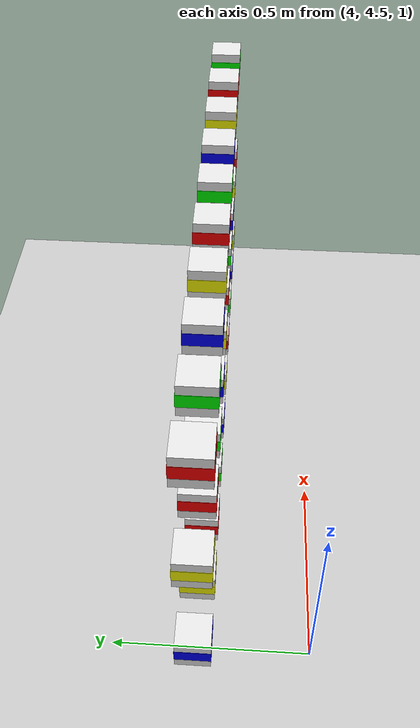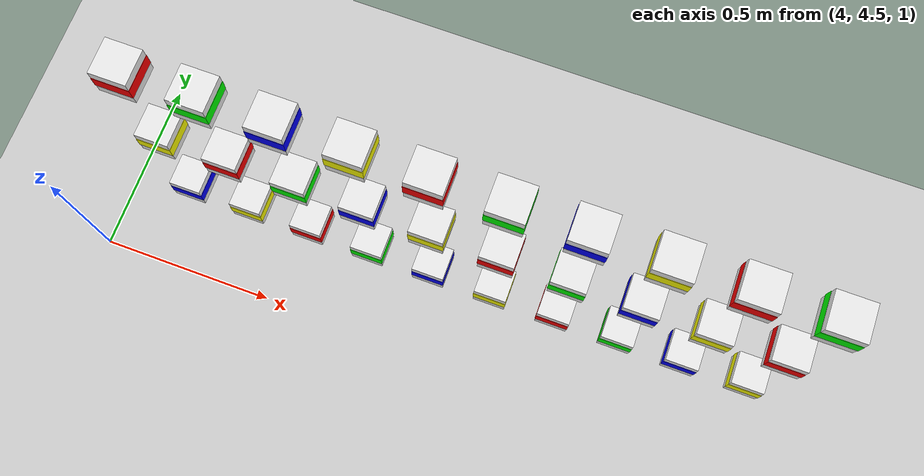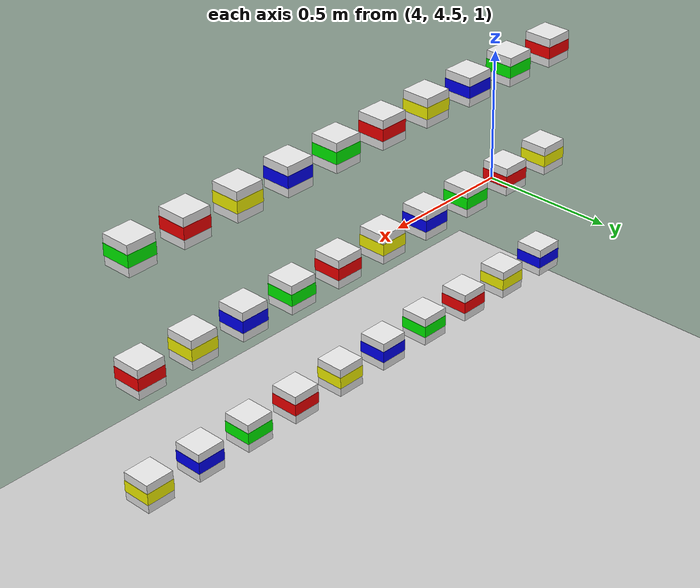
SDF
<sdf version="1.7">
 <world name="default">
  <light name="sun" type="directional">
   <pose>0 0 10 0 0 0</pose>
   <diffuse>0.8 0.8 0.8 1</diffuse>
   <specular>0.2 0.2 0.2 1</specular>
   <attenuation>
    <range>1000</range>
    <constant>0.9</constant>
    <linear>0.01</linear>
    <quadratic>0.001</quadratic>
   </attenuation>
   <direction>-0.5 0.1 -0.9</direction>
   <spot><inner_angle>0</inner_angle><outer_angle>0</outer_angle><falloff>0</falloff></spot>
  </light>
  <model name="ground_plane">
   <static>1</static>
   <link name="link">
    <collision name="collision">
     <geometry><plane><normal>0 0 1</normal><size>100 100</size></plane></geometry>
     <surface>
      <contact><collide_bitmask>65535</collide_bitmask></contact>
      <friction><ode><mu>100</mu><mu2>50</mu2></ode></friction>
     </surface>
    </collision>
    <visual name="visual">
     <cast_shadows>0</cast_shadows>
     <geometry><plane><normal>0 0 1</normal><size>100 100</size></plane></geometry>
     <material>
      <script><uri>file://media/materials/scripts/gazebo.material</uri><name>Gazebo/Grey</name></script>
     </material>
    </visual>
   </link>
  </model>
  <gravity>0 0 -9.8</gravity>
  <magnetic_field>6e-06 2.3e-05 -4.2e-05</magnetic_field>
  <atmosphere type="adiabatic"/>
  <physics type="ode">
   <max_step_size>0.001</max_step_size>
   <real_time_factor>1</real_time_factor>
   <real_time_update_rate>200</real_time_update_rate>
  </physics>
  <scene><ambient>0.4 0.4 0.4 1</ambient><background>0.7 0.7 0.7 1</background><shadows>1</shadows></scene>
  <audio><device>default</device></audio>
  <spherical_coordinates>
   <surface_model>EARTH_WGS84</surface_model>
   <latitude_deg>0</latitude_deg>
   <longitude_deg>0</longitude_deg>
   <elevation>0</elevation>
   <heading_deg>0</heading_deg>
  </spherical_coordinates>
  <model name="medicine_box_L1_1">
   <static>0</static>
   <pose>4.1 4.8 0.85 0 0 0</pose>
   <link name="link">
    <inertial><mass>0.1</mass><inertia><ixx>0.0001</ixx><iyy>0.0001</iyy><izz>0.0001</izz></inertia></inertial>
    <collision name="col">
     <geometry><box><size>0.1 0.1 0.1</size></box></geometry>
     <surface><friction><ode><mu>1.0</mu><mu2>1.0</mu2></ode></friction></surface>
    </collision>
    <visual name="vis_base">
     <geometry><box><size>0.1 0.1 0.1</size></box></geometry>
     <material><script><name>Gazebo/White</name></script></material>
    </visual>
    <visual name="vis_band">
     <geometry><box><size>0.102 0.102 0.04</size></box></geometry>
     <material><ambient>0 0 1 1.0</ambient><diffuse>0 0 1 1.0</diffuse></material>
    </visual>
   </link>
  </model>
  <model name="medicine_box_L1_2">
   <static>0</static>
   <pose>4.3 4.8 0.85 0 0 0</pose>
   <link name="link">
    <inertial><mass>0.1</mass><inertia><ixx>0.0001</ixx><iyy>0.0001</iyy><izz>0.0001</izz></inertia></inertial>
    <collision name="col">
     <geometry><box><size>0.1 0.1 0.1</size></box></geometry>
     <surface><friction><ode><mu>1.0</mu><mu2>1.0</mu2></ode></friction></surface>
    </collision>
    <visual name="vis_base">
     <geometry><box><size>0.1 0.1 0.1</size></box></geometry>
     <material><script><name>Gazebo/White</name></script></material>
    </visual>
    <visual name="vis_band">
     <geometry><box><size>0.102 0.102 0.04</size></box></geometry>
     <material><ambient>1 1 0 1.0</ambient><diffuse>1 1 0 1.0</diffuse></material>
    </visual>
   </link>
  </model>
  <model name="medicine_box_L1_3">
   <static>0</static>
   <pose>4.5 4.8 0.85 0 0 0</pose>
   <link name="link">
    <inertial><mass>0.1</mass><inertia><ixx>0.0001</ixx><iyy>0.0001</iyy><izz>0.0001</izz></inertia></inertial>
    <collision name="col">
     <geometry><box><size>0.1 0.1 0.1</size></box></geometry>
     <surface><friction><ode><mu>1.0</mu><mu2>1.0</mu2></ode></friction></surface>
    </collision>
    <visual name="vis_base">
     <geometry><box><size>0.1 0.1 0.1</size></box></geometry>
     <material><script><name>Gazebo/White</name></script></material>
    </visual>
    <visual name="vis_band">
     <geometry><box><size>0.102 0.102 0.04</size></box></geometry>
     <material><ambient>1 0 0 1.0</ambient><diffuse>1 0 0 1.0</diffuse></material>
    </visual>
   </link>
  </model>
  <model name="medicine_box_L1_4">
   <static>0</static>
   <pose>4.7 4.8 0.85 0 0 0</pose>
   <link name="link">
    <inertial><mass>0.1</mass><inertia><ixx>0.0001</ixx><iyy>0.0001</iyy><izz>0.0001</izz></inertia></inertial>
    <collision name="col">
     <geometry><box><size>0.1 0.1 0.1</size></box></geometry>
     <surface><friction><ode><mu>1.0</mu><mu2>1.0</mu2></ode></friction></surface>
    </collision>
    <visual name="vis_base">
     <geometry><box><size>0.1 0.1 0.1</size></box></geometry>
     <material><script><name>Gazebo/White</name></script></material>
    </visual>
    <visual name="vis_band">
     <geometry><box><size>0.102 0.102 0.04</size></box></geometry>
     <material><ambient>0 1 0 1.0</ambient><diffuse>0 1 0 1.0</diffuse></material>
    </visual>
   </link>
  </model>
  <model name="medicine_box_L1_5">
   <static>0</static>
   <pose>4.9 4.8 0.85 0 0 0</pose>
   <link name="link">
    <inertial><mass>0.1</mass><inertia><ixx>0.0001</ixx><iyy>0.0001</iyy><izz>0.0001</izz></inertia></inertial>
    <collision name="col">
     <geometry><box><size>0.1 0.1 0.1</size></box></geometry>
     <surface><friction><ode><mu>1.0</mu><mu2>1.0</mu2></ode></friction></surface>
    </collision>
    <visual name="vis_base">
     <geometry><box><size>0.1 0.1 0.1</size></box></geometry>
     <material><script><name>Gazebo/White</name></script></material>
    </visual>
    <visual name="vis_band">
     <geometry><box><size>0.102 0.102 0.04</size></box></geometry>
     <material><ambient>0 0 1 1.0</ambient><diffuse>0 0 1 1.0</diffuse></material>
    </visual>
   </link>
  </model>
  <model name="medicine_box_L1_6">
   <static>0</static>
   <pose>5.1 4.8 0.85 0 0 0</pose>
   <link name="link">
    <inertial><mass>0.1</mass><inertia><ixx>0.0001</ixx><iyy>0.0001</iyy><izz>0.0001</izz></inertia></inertial>
    <collision name="col">
     <geometry><box><size>0.1 0.1 0.1</size></box></geometry>
     <surface><friction><ode><mu>1.0</mu><mu2>1.0</mu2></ode></friction></surface>
    </collision>
    <visual name="vis_base">
     <geometry><box><size>0.1 0.1 0.1</size></box></geometry>
     <material><script><name>Gazebo/White</name></script></material>
    </visual>
    <visual name="vis_band">
     <geometry><box><size>0.102 0.102 0.04</size></box></geometry>
     <material><ambient>1 1 0 1.0</ambient><diffuse>1 1 0 1.0</diffuse></material>
    </visual>
   </link>
  </model>
  <model name="medicine_box_L1_7">
   <static>0</static>
   <pose>5.3 4.8 0.85 0 0 0</pose>
   <link name="link">
    <inertial><mass>0.1</mass><inertia><ixx>0.0001</ixx><iyy>0.0001</iyy><izz>0.0001</izz></inertia></inertial>
    <collision name="col">
     <geometry><box><size>0.1 0.1 0.1</size></box></geometry>
     <surface><friction><ode><mu>1.0</mu><mu2>1.0</mu2></ode></friction></surface>
    </collision>
    <visual name="vis_base">
     <geometry><box><size>0.1 0.1 0.1</size></box></geometry>
     <material><script><name>Gazebo/White</name></script></material>
    </visual>
    <visual name="vis_band">
     <geometry><box><size>0.102 0.102 0.04</size></box></geometry>
     <material><ambient>1 0 0 1.0</ambient><diffuse>1 0 0 1.0</diffuse></material>
    </visual>
   </link>
  </model>
  <model name="medicine_box_L1_8">
   <static>0</static>
   <pose>5.5 4.8 0.85 0 0 0</pose>
   <link name="link">
    <inertial><mass>0.1</mass><inertia><ixx>0.0001</ixx><iyy>0.0001</iyy><izz>0.0001</izz></inertia></inertial>
    <collision name="col">
     <geometry><box><size>0.1 0.1 0.1</size></box></geometry>
     <surface><friction><ode><mu>1.0</mu><mu2>1.0</mu2></ode></friction></surface>
    </collision>
    <visual name="vis_base">
     <geometry><box><size>0.1 0.1 0.1</size></box></geometry>
     <material><script><name>Gazebo/White</name></script></material>
    </visual>
    <visual name="vis_band">
     <geometry><box><size>0.102 0.102 0.04</size></box></geometry>
     <material><ambient>0 1 0 1.0</ambient><diffuse>0 1 0 1.0</diffuse></material>
    </visual>
   </link>
  </model>
  <model name="medicine_box_L1_9">
   <static>0</static>
   <pose>5.7 4.8 0.85 0 0 0</pose>
   <link name="link">
    <inertial><mass>0.1</mass><inertia><ixx>0.0001</ixx><iyy>0.0001</iyy><izz>0.0001</izz></inertia></inertial>
    <collision name="col">
     <geometry><box><size>0.1 0.1 0.1</size></box></geometry>
     <surface><friction><ode><mu>1.0</mu><mu2>1.0</mu2></ode></friction></surface>
    </collision>
    <visual name="vis_base">
     <geometry><box><size>0.1 0.1 0.1</size></box></geometry>
     <material><script><name>Gazebo/White</name></script></material>
    </visual>
    <visual name="vis_band">
     <geometry><box><size>0.102 0.102 0.04</size></box></geometry>
     <material><ambient>0 0 1 1.0</ambient><diffuse>0 0 1 1.0</diffuse></material>
    </visual>
   </link>
  </model>
  <model name="medicine_box_L1_10">
   <static>0</static>
   <pose>5.9 4.8 0.85 0 0 0</pose>
   <link name="link">
    <inertial><mass>0.1</mass><inertia><ixx>0.0001</ixx><iyy>0.0001</iyy><izz>0.0001</izz></inertia></inertial>
    <collision name="col">
     <geometry><box><size>0.1 0.1 0.1</size></box></geometry>
     <surface><friction><ode><mu>1.0</mu><mu2>1.0</mu2></ode></friction></surface>
    </collision>
    <visual name="vis_base">
     <geometry><box><size>0.1 0.1 0.1</size></box></geometry>
     <material><script><name>Gazebo/White</name></script></material>
    </visual>
    <visual name="vis_band">
     <geometry><box><size>0.102 0.102 0.04</size></box></geometry>
     <material><ambient>1 1 0 1.0</ambient><diffuse>1 1 0 1.0</diffuse></material>
    </visual>
   </link>
  </model>
  <model name="medicine_box_L2_1">
   <static>0</static>
   <pose>4.1 4.8 1.25 0 0 0</pose>
   <link name="link">
    <inertial><mass>0.1</mass><inertia><ixx>0.0001</ixx><iyy>0.0001</iyy><izz>0.0001</izz></inertia></inertial>
    <collision name="col">
     <geometry><box><size>0.1 0.1 0.1</size></box></geometry>
     <surface><friction><ode><mu>1.0</mu><mu2>1.0</mu2></ode></friction></surface>
    </collision>
    <visual name="vis_base">
     <geometry><box><size>0.1 0.1 0.1</size></box></geometry>
     <material><script><name>Gazebo/White</name></script></material>
    </visual>
    <visual name="vis_band">
     <geometry><box><size>0.102 0.102 0.04</size></box></geometry>
     <material><ambient>1 1 0 1.0</ambient><diffuse>1 1 0 1.0</diffuse></material>
    </visual>
   </link>
  </model>
  <model name="medicine_box_L2_2">
   <static>0</static>
   <pose>4.3 4.8 1.25 0 0 0</pose>
   <link name="link">
    <inertial><mass>0.1</mass><inertia><ixx>0.0001</ixx><iyy>0.0001</iyy><izz>0.0001</izz></inertia></inertial>
    <collision name="col">
     <geometry><box><size>0.1 0.1 0.1</size></box></geometry>
     <surface><friction><ode><mu>1.0</mu><mu2>1.0</mu2></ode></friction></surface>
    </collision>
    <visual name="vis_base">
     <geometry><box><size>0.1 0.1 0.1</size></box></geometry>
     <material><script><name>Gazebo/White</name></script></material>
    </visual>
    <visual name="vis_band">
     <geometry><box><size>0.102 0.102 0.04</size></box></geometry>
     <material><ambient>1 0 0 1.0</ambient><diffuse>1 0 0 1.0</diffuse></material>
    </visual>
   </link>
  </model>
  <model name="medicine_box_L2_3">
   <static>0</static>
   <pose>4.5 4.8 1.25 0 0 0</pose>
   <link name="link">
    <inertial><mass>0.1</mass><inertia><ixx>0.0001</ixx><iyy>0.0001</iyy><izz>0.0001</izz></inertia></inertial>
    <collision name="col">
     <geometry><box><size>0.1 0.1 0.1</size></box></geometry>
     <surface><friction><ode><mu>1.0</mu><mu2>1.0</mu2></ode></friction></surface>
    </collision>
    <visual name="vis_base">
     <geometry><box><size>0.1 0.1 0.1</size></box></geometry>
     <material><script><name>Gazebo/White</name></script></material>
    </visual>
    <visual name="vis_band">
     <geometry><box><size>0.102 0.102 0.04</size></box></geometry>
     <material><ambient>0 1 0 1.0</ambient><diffuse>0 1 0 1.0</diffuse></material>
    </visual>
   </link>
  </model>
  <model name="medicine_box_L2_4">
   <static>0</static>
   <pose>4.7 4.8 1.25 0 0 0</pose>
   <link name="link">
    <inertial><mass>0.1</mass><inertia><ixx>0.0001</ixx><iyy>0.0001</iyy><izz>0.0001</izz></inertia></inertial>
    <collision name="col">
     <geometry><box><size>0.1 0.1 0.1</size></box></geometry>
     <surface><friction><ode><mu>1.0</mu><mu2>1.0</mu2></ode></friction></surface>
    </collision>
    <visual name="vis_base">
     <geometry><box><size>0.1 0.1 0.1</size></box></geometry>
     <material><script><name>Gazebo/White</name></script></material>
    </visual>
    <visual name="vis_band">
     <geometry><box><size>0.102 0.102 0.04</size></box></geometry>
     <material><ambient>0 0 1 1.0</ambient><diffuse>0 0 1 1.0</diffuse></material>
    </visual>
   </link>
  </model>
  <model name="medicine_box_L2_5">
   <static>0</static>
   <pose>4.9 4.8 1.25 0 0 0</pose>
   <link name="link">
    <inertial><mass>0.1</mass><inertia><ixx>0.0001</ixx><iyy>0.0001</iyy><izz>0.0001</izz></inertia></inertial>
    <collision name="col">
     <geometry><box><size>0.1 0.1 0.1</size></box></geometry>
     <surface><friction><ode><mu>1.0</mu><mu2>1.0</mu2></ode></friction></surface>
    </collision>
    <visual name="vis_base">
     <geometry><box><size>0.1 0.1 0.1</size></box></geometry>
     <material><script><name>Gazebo/White</name></script></material>
    </visual>
    <visual name="vis_band">
     <geometry><box><size>0.102 0.102 0.04</size></box></geometry>
     <material><ambient>1 1 0 1.0</ambient><diffuse>1 1 0 1.0</diffuse></material>
    </visual>
   </link>
  </model>
  <model name="medicine_box_L2_6">
   <static>0</static>
   <pose>5.1 4.8 1.25 0 0 0</pose>
   <link name="link">
    <inertial><mass>0.1</mass><inertia><ixx>0.0001</ixx><iyy>0.0001</iyy><izz>0.0001</izz></inertia></inertial>
    <collision name="col">
     <geometry><box><size>0.1 0.1 0.1</size></box></geometry>
     <surface><friction><ode><mu>1.0</mu><mu2>1.0</mu2></ode></friction></surface>
    </collision>
    <visual name="vis_base">
     <geometry><box><size>0.1 0.1 0.1</size></box></geometry>
     <material><script><name>Gazebo/White</name></script></material>
    </visual>
    <visual name="vis_band">
     <geometry><box><size>0.102 0.102 0.04</size></box></geometry>
     <material><ambient>1 0 0 1.0</ambient><diffuse>1 0 0 1.0</diffuse></material>
    </visual>
   </link>
  </model>
  <model name="medicine_box_L2_7">
   <static>0</static>
   <pose>5.3 4.8 1.25 0 0 0</pose>
   <link name="link">
    <inertial><mass>0.1</mass><inertia><ixx>0.0001</ixx><iyy>0.0001</iyy><izz>0.0001</izz></inertia></inertial>
    <collision name="col">
     <geometry><box><size>0.1 0.1 0.1</size></box></geometry>
     <surface><friction><ode><mu>1.0</mu><mu2>1.0</mu2></ode></friction></surface>
    </collision>
    <visual name="vis_base">
     <geometry><box><size>0.1 0.1 0.1</size></box></geometry>
     <material><script><name>Gazebo/White</name></script></material>
    </visual>
    <visual name="vis_band">
     <geometry><box><size>0.102 0.102 0.04</size></box></geometry>
     <material><ambient>0 1 0 1.0</ambient><diffuse>0 1 0 1.0</diffuse></material>
    </visual>
   </link>
  </model>
  <model name="medicine_box_L2_8">
   <static>0</static>
   <pose>5.5 4.8 1.25 0 0 0</pose>
   <link name="link">
    <inertial><mass>0.1</mass><inertia><ixx>0.0001</ixx><iyy>0.0001</iyy><izz>0.0001</izz></inertia></inertial>
    <collision name="col">
     <geometry><box><size>0.1 0.1 0.1</size></box></geometry>
     <surface><friction><ode><mu>1.0</mu><mu2>1.0</mu2></ode></friction></surface>
    </collision>
    <visual name="vis_base">
     <geometry><box><size>0.1 0.1 0.1</size></box></geometry>
     <material><script><name>Gazebo/White</name></script></material>
    </visual>
    <visual name="vis_band">
     <geometry><box><size>0.102 0.102 0.04</size></box></geometry>
     <material><ambient>0 0 1 1.0</ambient><diffuse>0 0 1 1.0</diffuse></material>
    </visual>
   </link>
  </model>
  <model name="medicine_box_L2_9">
   <static>0</static>
   <pose>5.7 4.8 1.25 0 0 0</pose>
   <link name="link">
    <inertial><mass>0.1</mass><inertia><ixx>0.0001</ixx><iyy>0.0001</iyy><izz>0.0001</izz></inertia></inertial>
    <collision name="col">
     <geometry><box><size>0.1 0.1 0.1</size></box></geometry>
     <surface><friction><ode><mu>1.0</mu><mu2>1.0</mu2></ode></friction></surface>
    </collision>
    <visual name="vis_base">
     <geometry><box><size>0.1 0.1 0.1</size></box></geometry>
     <material><script><name>Gazebo/White</name></script></material>
    </visual>
    <visual name="vis_band">
     <geometry><box><size>0.102 0.102 0.04</size></box></geometry>
     <material><ambient>1 1 0 1.0</ambient><diffuse>1 1 0 1.0</diffuse></material>
    </visual>
   </link>
  </model>
  <model name="medicine_box_L2_10">
   <static>0</static>
   <pose>5.9 4.8 1.25 0 0 0</pose>
   <link name="link">
    <inertial><mass>0.1</mass><inertia><ixx>0.0001</ixx><iyy>0.0001</iyy><izz>0.0001</izz></inertia></inertial>
    <collision name="col">
     <geometry><box><size>0.1 0.1 0.1</size></box></geometry>
     <surface><friction><ode><mu>1.0</mu><mu2>1.0</mu2></ode></friction></surface>
    </collision>
    <visual name="vis_base">
     <geometry><box><size>0.1 0.1 0.1</size></box></geometry>
     <material><script><name>Gazebo/White</name></script></material>
    </visual>
    <visual name="vis_band">
     <geometry><box><size>0.102 0.102 0.04</size></box></geometry>
     <material><ambient>1 0 0 1.0</ambient><diffuse>1 0 0 1.0</diffuse></material>
    </visual>
   </link>
  </model>
  <model name="medicine_box_L3_1">
   <static>0</static>
   <pose>4.1 4.8 1.65 0 0 0</pose>
   <link name="link">
    <inertial><mass>0.1</mass><inertia><ixx>0.0001</ixx><iyy>0.0001</iyy><izz>0.0001</izz></inertia></inertial>
    <collision name="col">
     <geometry><box><size>0.1 0.1 0.1</size></box></geometry>
     <surface><friction><ode><mu>1.0</mu><mu2>1.0</mu2></ode></friction></surface>
    </collision>
    <visual name="vis_base">
     <geometry><box><size>0.1 0.1 0.1</size></box></geometry>
     <material><script><name>Gazebo/White</name></script></material>
    </visual>
    <visual name="vis_band">
     <geometry><box><size>0.102 0.102 0.04</size></box></geometry>
     <material><ambient>1 0 0 1.0</ambient><diffuse>1 0 0 1.0</diffuse></material>
    </visual>
   </link>
  </model>
  <model name="medicine_box_L3_2">
   <static>0</static>
   <pose>4.3 4.8 1.65 0 0 0</pose>
   <link name="link">
    <inertial><mass>0.1</mass><inertia><ixx>0.0001</ixx><iyy>0.0001</iyy><izz>0.0001</izz></inertia></inertial>
    <collision name="col">
     <geometry><box><size>0.1 0.1 0.1</size></box></geometry>
     <surface><friction><ode><mu>1.0</mu><mu2>1.0</mu2></ode></friction></surface>
    </collision>
    <visual name="vis_base">
     <geometry><box><size>0.1 0.1 0.1</size></box></geometry>
     <material><script><name>Gazebo/White</name></script></material>
    </visual>
    <visual name="vis_band">
     <geometry><box><size>0.102 0.102 0.04</size></box></geometry>
     <material><ambient>0 1 0 1.0</ambient><diffuse>0 1 0 1.0</diffuse></material>
    </visual>
   </link>
  </model>
  <model name="medicine_box_L3_3">
   <static>0</static>
   <pose>4.5 4.8 1.65 0 0 0</pose>
   <link name="link">
    <inertial><mass>0.1</mass><inertia><ixx>0.0001</ixx><iyy>0.0001</iyy><izz>0.0001</izz></inertia></inertial>
    <collision name="col">
     <geometry><box><size>0.1 0.1 0.1</size></box></geometry>
     <surface><friction><ode><mu>1.0</mu><mu2>1.0</mu2></ode></friction></surface>
    </collision>
    <visual name="vis_base">
     <geometry><box><size>0.1 0.1 0.1</size></box></geometry>
     <material><script><name>Gazebo/White</name></script></material>
    </visual>
    <visual name="vis_band">
     <geometry><box><size>0.102 0.102 0.04</size></box></geometry>
     <material><ambient>0 0 1 1.0</ambient><diffuse>0 0 1 1.0</diffuse></material>
    </visual>
   </link>
  </model>
  <model name="medicine_box_L3_4">
   <static>0</static>
   <pose>4.7 4.8 1.65 0 0 0</pose>
   <link name="link">
    <inertial><mass>0.1</mass><inertia><ixx>0.0001</ixx><iyy>0.0001</iyy><izz>0.0001</izz></inertia></inertial>
    <collision name="col">
     <geometry><box><size>0.1 0.1 0.1</size></box></geometry>
     <surface><friction><ode><mu>1.0</mu><mu2>1.0</mu2></ode></friction></surface>
    </collision>
    <visual name="vis_base">
     <geometry><box><size>0.1 0.1 0.1</size></box></geometry>
     <material><script><name>Gazebo/White</name></script></material>
    </visual>
    <visual name="vis_band">
     <geometry><box><size>0.102 0.102 0.04</size></box></geometry>
     <material><ambient>1 1 0 1.0</ambient><diffuse>1 1 0 1.0</diffuse></material>
    </visual>
   </link>
  </model>
  <model name="medicine_box_L3_5">
   <static>0</static>
   <pose>4.9 4.8 1.65 0 0 0</pose>
   <link name="link">
    <inertial><mass>0.1</mass><inertia><ixx>0.0001</ixx><iyy>0.0001</iyy><izz>0.0001</izz></inertia></inertial>
    <collision name="col">
     <geometry><box><size>0.1 0.1 0.1</size></box></geometry>
     <surface><friction><ode><mu>1.0</mu><mu2>1.0</mu2></ode></friction></surface>
    </collision>
    <visual name="vis_base">
     <geometry><box><size>0.1 0.1 0.1</size></box></geometry>
     <material><script><name>Gazebo/White</name></script></material>
    </visual>
    <visual name="vis_band">
     <geometry><box><size>0.102 0.102 0.04</size></box></geometry>
     <material><ambient>1 0 0 1.0</ambient><diffuse>1 0 0 1.0</diffuse></material>
    </visual>
   </link>
  </model>
  <model name="medicine_box_L3_6">
   <static>0</static>
   <pose>5.1 4.8 1.65 0 0 0</pose>
   <link name="link">
    <inertial><mass>0.1</mass><inertia><ixx>0.0001</ixx><iyy>0.0001</iyy><izz>0.0001</izz></inertia></inertial>
    <collision name="col">
     <geometry><box><size>0.1 0.1 0.1</size></box></geometry>
     <surface><friction><ode><mu>1.0</mu><mu2>1.0</mu2></ode></friction></surface>
    </collision>
    <visual name="vis_base">
     <geometry><box><size>0.1 0.1 0.1</size></box></geometry>
     <material><script><name>Gazebo/White</name></script></material>
    </visual>
    <visual name="vis_band">
     <geometry><box><size>0.102 0.102 0.04</size></box></geometry>
     <material><ambient>0 1 0 1.0</ambient><diffuse>0 1 0 1.0</diffuse></material>
    </visual>
   </link>
  </model>
  <model name="medicine_box_L3_7">
   <static>0</static>
   <pose>5.3 4.8 1.65 0 0 0</pose>
   <link name="link">
    <inertial><mass>0.1</mass><inertia><ixx>0.0001</ixx><iyy>0.0001</iyy><izz>0.0001</izz></inertia></inertial>
    <collision name="col">
     <geometry><box><size>0.1 0.1 0.1</size></box></geometry>
     <surface><friction><ode><mu>1.0</mu><mu2>1.0</mu2></ode></friction></surface>
    </collision>
    <visual name="vis_base">
     <geometry><box><size>0.1 0.1 0.1</size></box></geometry>
     <material><script><name>Gazebo/White</name></script></material>
    </visual>
    <visual name="vis_band">
     <geometry><box><size>0.102 0.102 0.04</size></box></geometry>
     <material><ambient>0 0 1 1.0</ambient><diffuse>0 0 1 1.0</diffuse></material>
    </visual>
   </link>
  </model>
  <model name="medicine_box_L3_8">
   <static>0</static>
   <pose>5.5 4.8 1.65 0 0 0</pose>
   <link name="link">
    <inertial><mass>0.1</mass><inertia><ixx>0.0001</ixx><iyy>0.0001</iyy><izz>0.0001</izz></inertia></inertial>
    <collision name="col">
     <geometry><box><size>0.1 0.1 0.1</size></box></geometry>
     <surface><friction><ode><mu>1.0</mu><mu2>1.0</mu2></ode></friction></surface>
    </collision>
    <visual name="vis_base">
     <geometry><box><size>0.1 0.1 0.1</size></box></geometry>
     <material><script><name>Gazebo/White</name></script></material>
    </visual>
    <visual name="vis_band">
     <geometry><box><size>0.102 0.102 0.04</size></box></geometry>
     <material><ambient>1 1 0 1.0</ambient><diffuse>1 1 0 1.0</diffuse></material>
    </visual>
   </link>
  </model>
  <model name="medicine_box_L3_9">
   <static>0</static>
   <pose>5.7 4.8 1.65 0 0 0</pose>
   <link name="link">
    <inertial><mass>0.1</mass><inertia><ixx>0.0001</ixx><iyy>0.0001</iyy><izz>0.0001</izz></inertia></inertial>
    <collision name="col">
     <geometry><box><size>0.1 0.1 0.1</size></box></geometry>
     <surface><friction><ode><mu>1.0</mu><mu2>1.0</mu2></ode></friction></surface>
    </collision>
    <visual name="vis_base">
     <geometry><box><size>0.1 0.1 0.1</size></box></geometry>
     <material><script><name>Gazebo/White</name></script></material>
    </visual>
    <visual name="vis_band">
     <geometry><box><size>0.102 0.102 0.04</size></box></geometry>
     <material><ambient>1 0 0 1.0</ambient><diffuse>1 0 0 1.0</diffuse></material>
    </visual>
   </link>
  </model>
  <model name="medicine_box_L3_10">
   <static>0</static>
   <pose>5.9 4.8 1.65 0 0 0</pose>
   <link name="link">
    <inertial><mass>0.1</mass><inertia><ixx>0.0001</ixx><iyy>0.0001</iyy><izz>0.0001</izz></inertia></inertial>
    <collision name="col">
     <geometry><box><size>0.1 0.1 0.1</size></box></geometry>
     <surface><friction><ode><mu>1.0</mu><mu2>1.0</mu2></ode></friction></surface>
    </collision>
    <visual name="vis_base">
     <geometry><box><size>0.1 0.1 0.1</size></box></geometry>
     <material><script><name>Gazebo/White</name></script></material>
    </visual>
    <visual name="vis_band">
     <geometry><box><size>0.102 0.102 0.04</size></box></geometry>
     <material><ambient>0 1 0 1.0</ambient><diffuse>0 1 0 1.0</diffuse></material>
    </visual>
   </link>
  </model>
 </world>
</sdf>
